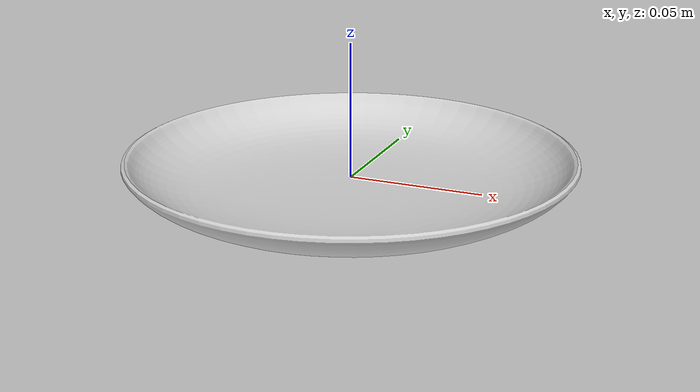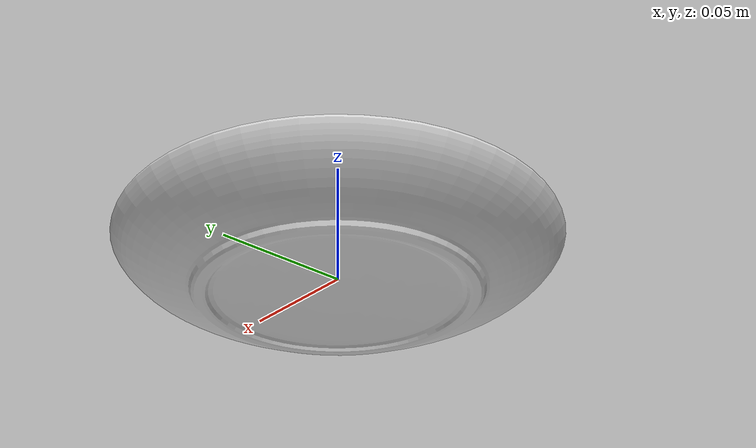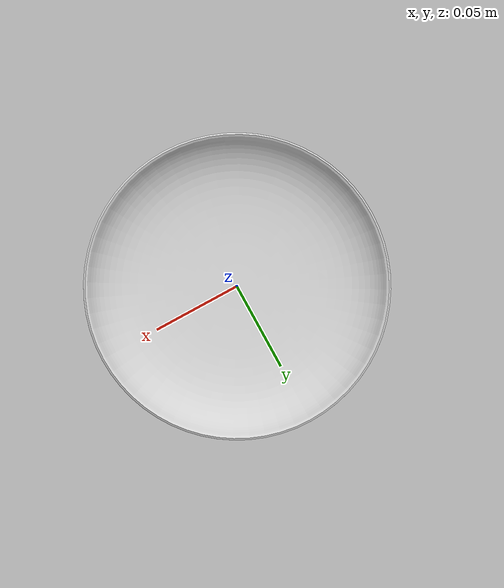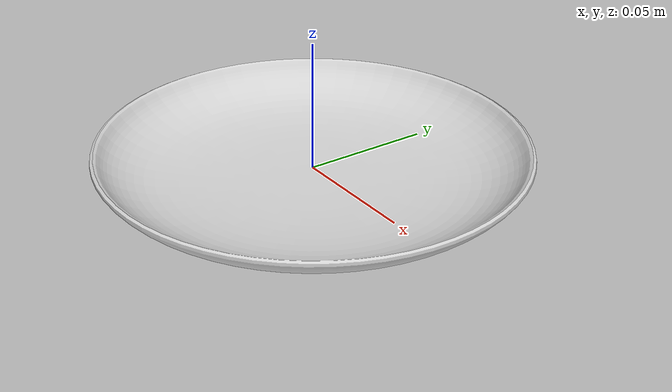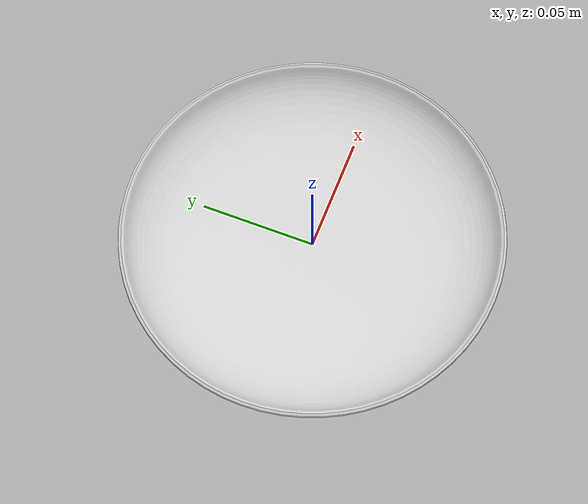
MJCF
<?xml version="1.0" ?>
<mujoco model="small_plate">
	<compiler meshdir="small_plate/meshes" texturedir="small_plate/textures" angle="radian" autolimits="true" balanceinertia="true" boundmass="0.000001" boundinertia="0.000001"/>
	<default>
		<default class="visual">
			<geom contype="0" conaffinity="0"/>
		</default>
		<default class="collision">
			<geom rgba="1.0 0.0 0.0 0.0"/>
		</default>
	</default>
	<asset>
		<mesh name="PlateSmallSize" file="stl/PlateSmallSize.stl" scale="1.0 1.0 1.0"/>
		<mesh name="PlateSmallSize_001" file="stl/PlateSmallSize_001.stl" scale="1.0 1.0 1.0"/>
		<mesh name="PlateSmallSize_002" file="stl/PlateSmallSize_002.stl" scale="1.0 1.0 1.0"/>
		<mesh name="PlateSmallSize_003" file="stl/PlateSmallSize_003.stl" scale="1.0 1.0 1.0"/>
		<mesh name="PlateSmallSize_004" file="stl/PlateSmallSize_004.stl" scale="1.0 1.0 1.0"/>
		<mesh name="PlateSmallSize_005" file="stl/PlateSmallSize_005.stl" scale="1.0 1.0 1.0"/>
		<mesh name="PlateSmallSize_006" file="stl/PlateSmallSize_006.stl" scale="1.0 1.0 1.0"/>
		<mesh name="PlateSmallSize_007" file="stl/PlateSmallSize_007.stl" scale="1.0 1.0 1.0"/>
		<mesh name="PlateSmallSize_008" file="stl/PlateSmallSize_008.stl" scale="1.0 1.0 1.0"/>
		<mesh name="PlateSmallSize_009" file="stl/PlateSmallSize_009.stl" scale="1.0 1.0 1.0"/>
		<mesh name="PlateSmallSize_010" file="stl/PlateSmallSize_010.stl" scale="1.0 1.0 1.0"/>
		<mesh name="PlateSmallSize_011" file="stl/PlateSmallSize_011.stl" scale="1.0 1.0 1.0"/>
		<mesh name="PlateSmallSize_012" file="stl/PlateSmallSize_012.stl" scale="1.0 1.0 1.0"/>
		<mesh name="PlateSmallSize_013" file="stl/PlateSmallSize_013.stl" scale="1.0 1.0 1.0"/>
		<mesh name="PlateSmallSize_014" file="stl/PlateSmallSize_014.stl" scale="1.0 1.0 1.0"/>
		<mesh name="PlateSmallSize_015" file="stl/PlateSmallSize_015.stl" scale="1.0 1.0 1.0"/>
		<mesh name="PlateSmallSize_016" file="stl/PlateSmallSize_016.stl" scale="1.0 1.0 1.0"/>
		<mesh name="PlateSmallSize_017" file="stl/PlateSmallSize_017.stl" scale="1.0 1.0 1.0"/>
		<mesh name="PlateSmallSize_018" file="stl/PlateSmallSize_018.stl" scale="1.0 1.0 1.0"/>
		<mesh name="PlateSmallSize_019" file="stl/PlateSmallSize_019.stl" scale="1.0 1.0 1.0"/>
		<mesh name="PlateSmallSize_020" file="stl/PlateSmallSize_020.stl" scale="1.0 1.0 1.0"/>
		<material name="M_PlateSmallSize" rgba="0.8098999857902527 0.8098999857902527 0.8098999857902527 1.0" emission="0.0"/>
	</asset>
	<worldbody>
		<body name="small_plate" pos="0.0 0.0 0.0" quat="1.0 0.0 0.0 0.0">
			<inertial mass="0.1863880604505539" pos="-4.1153627727830155e-10 -3.449789431897443e-08 -0.0026295173447579145" quat="-0.48509088158607483 5.5061754267171636e-08 9.390260657937688e-08 0.8744637370109558" diaginertia="0.0003315449575893581 0.000331545015797019 0.0006525356438942254"/>
			<geom name="PlateSmallSize" type="mesh" pos="0.0 0.0 0.0" quat="1.0 0.0 0.0 0.0" mesh="PlateSmallSize" material="M_PlateSmallSize" class="visual"/>
			<geom name="PlateSmallSize_001" type="mesh" pos="0.0 0.0 0.0" quat="1.0 0.0 0.0 0.0" mesh="PlateSmallSize_001" class="collision"/>
			<geom name="PlateSmallSize_002" type="mesh" pos="0.0 0.0 0.0" quat="1.0 0.0 0.0 0.0" mesh="PlateSmallSize_002" class="collision"/>
			<geom name="PlateSmallSize_003" type="mesh" pos="0.0 0.0 0.0" quat="1.0 0.0 0.0 0.0" mesh="PlateSmallSize_003" class="collision"/>
			<geom name="PlateSmallSize_004" type="mesh" pos="0.0 0.0 0.0" quat="1.0 0.0 0.0 0.0" mesh="PlateSmallSize_004" class="collision"/>
			<geom name="PlateSmallSize_005" type="mesh" pos="0.0 0.0 0.0" quat="1.0 0.0 0.0 0.0" mesh="PlateSmallSize_005" class="collision"/>
			<geom name="PlateSmallSize_006" type="mesh" pos="0.0 0.0 0.0" quat="1.0 0.0 0.0 0.0" mesh="PlateSmallSize_006" class="collision"/>
			<geom name="PlateSmallSize_007" type="mesh" pos="0.0 0.0 0.0" quat="1.0 0.0 0.0 0.0" mesh="PlateSmallSize_007" class="collision"/>
			<geom name="PlateSmallSize_008" type="mesh" pos="0.0 0.0 0.0" quat="1.0 0.0 0.0 0.0" mesh="PlateSmallSize_008" class="collision"/>
			<geom name="PlateSmallSize_009" type="mesh" pos="0.0 0.0 0.0" quat="1.0 0.0 0.0 0.0" mesh="PlateSmallSize_009" class="collision"/>
			<geom name="PlateSmallSize_010" type="mesh" pos="0.0 0.0 0.0" quat="1.0 0.0 0.0 0.0" mesh="PlateSmallSize_010" class="collision"/>
			<geom name="PlateSmallSize_011" type="mesh" pos="0.0 0.0 0.0" quat="1.0 0.0 0.0 0.0" mesh="PlateSmallSize_011" class="collision"/>
			<geom name="PlateSmallSize_012" type="mesh" pos="0.0 0.0 0.0" quat="1.0 0.0 0.0 0.0" mesh="PlateSmallSize_012" class="collision"/>
			<geom name="PlateSmallSize_013" type="mesh" pos="0.0 0.0 0.0" quat="1.0 0.0 0.0 0.0" mesh="PlateSmallSize_013" class="collision"/>
			<geom name="PlateSmallSize_014" type="mesh" pos="0.0 0.0 0.0" quat="1.0 0.0 0.0 0.0" mesh="PlateSmallSize_014" class="collision"/>
			<geom name="PlateSmallSize_015" type="mesh" pos="0.0 0.0 0.0" quat="1.0 0.0 0.0 0.0" mesh="PlateSmallSize_015" class="collision"/>
			<geom name="PlateSmallSize_016" type="mesh" pos="0.0 0.0 0.0" quat="1.0 0.0 0.0 0.0" mesh="PlateSmallSize_016" class="collision"/>
			<geom name="PlateSmallSize_017" type="mesh" pos="0.0 0.0 0.0" quat="1.0 0.0 0.0 0.0" mesh="PlateSmallSize_017" class="collision"/>
			<geom name="PlateSmallSize_018" type="mesh" pos="0.0 0.0 0.0" quat="1.0 0.0 0.0 0.0" mesh="PlateSmallSize_018" class="collision"/>
			<geom name="PlateSmallSize_019" type="mesh" pos="0.0 0.0 0.0" quat="1.0 0.0 0.0 0.0" mesh="PlateSmallSize_019" class="collision"/>
			<geom name="PlateSmallSize_020" type="mesh" pos="0.0 0.0 0.0" quat="1.0 0.0 0.0 0.0" mesh="PlateSmallSize_020" class="collision"/>
		</body>
	</worldbody>
	<equality/>
</mujoco>
